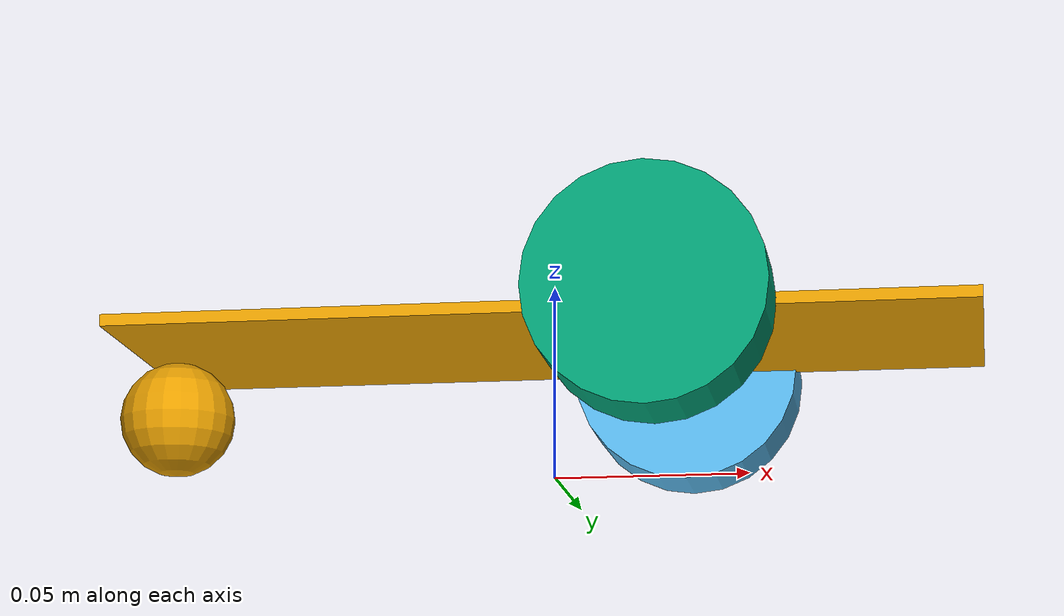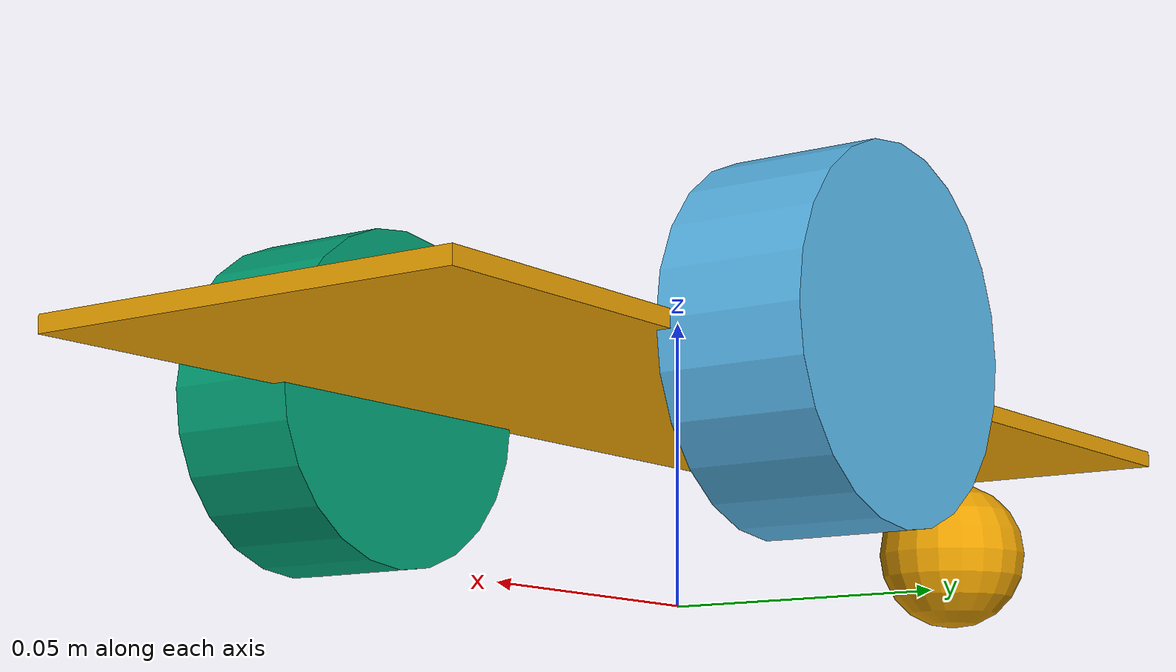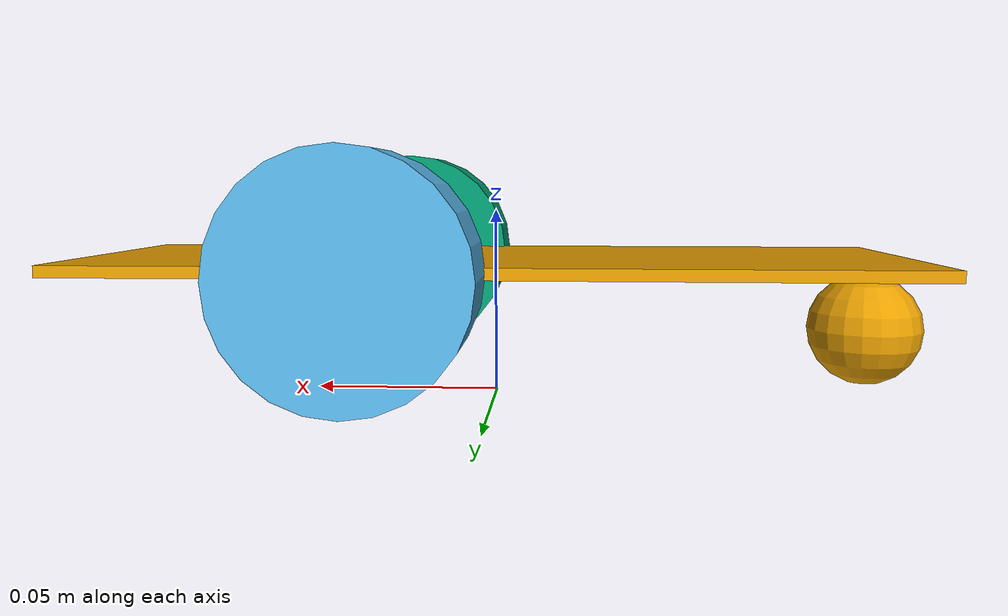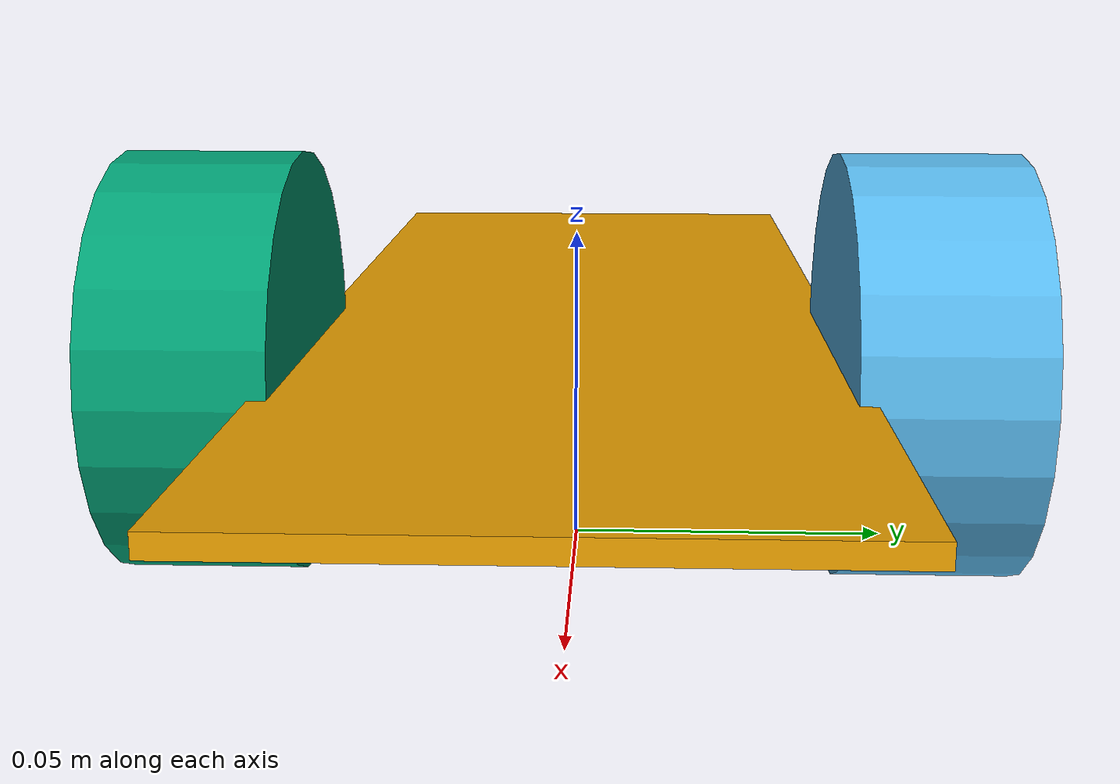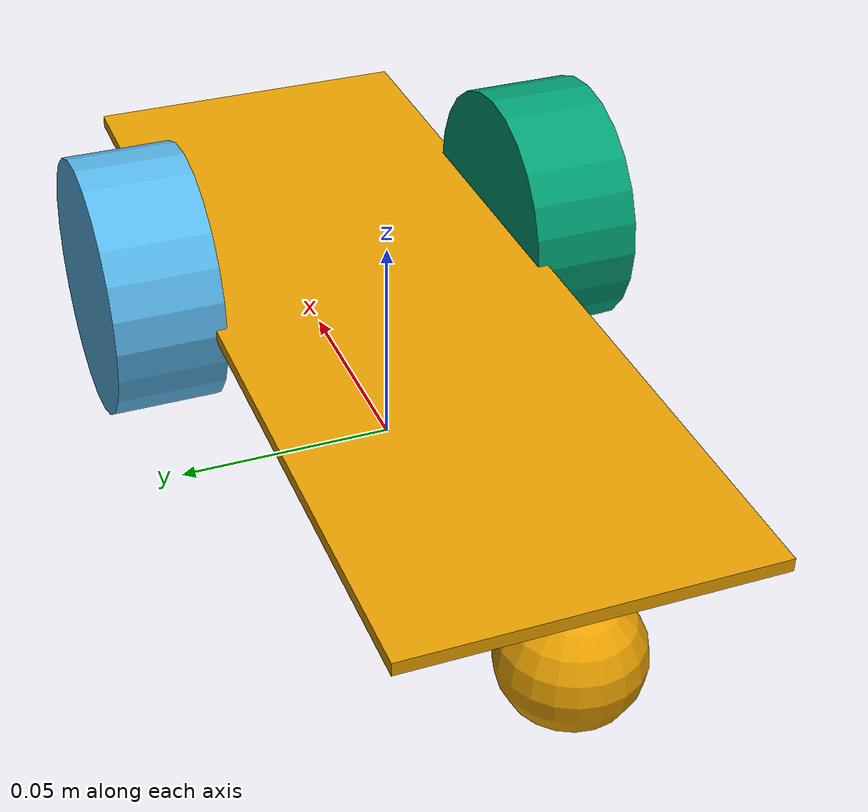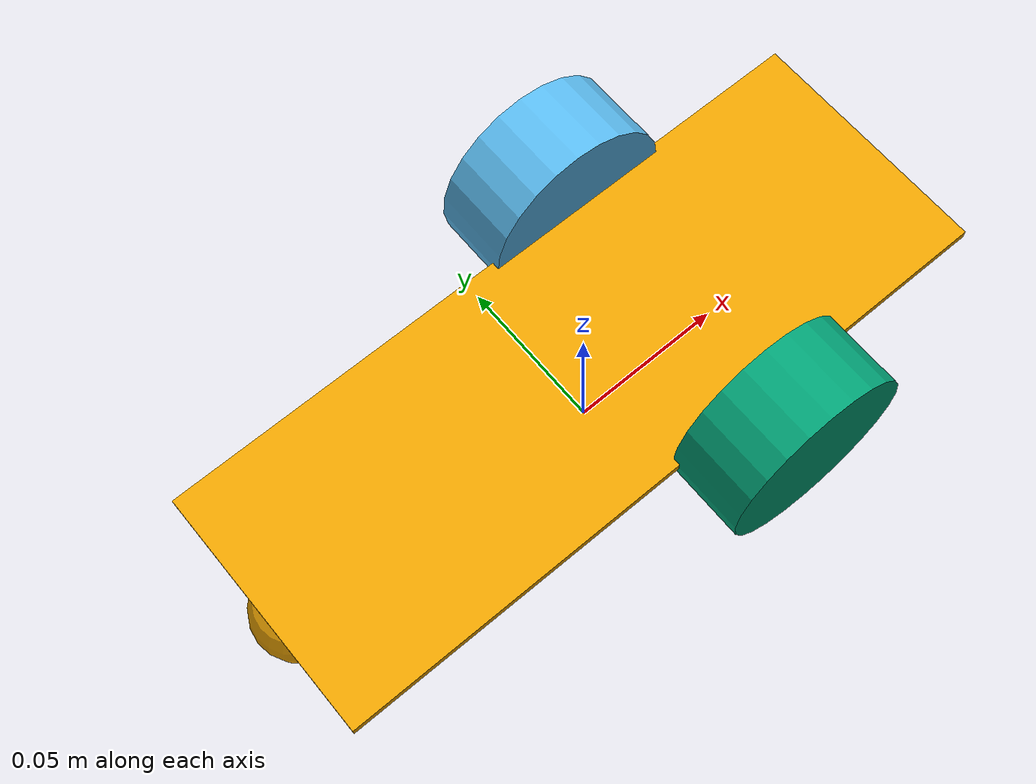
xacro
<?xml version='1.0'?>

<robot name="pidar" xmlns:xacro="http://www.ros.org/wiki/xacro">
  <link name='base_link'>
    <pose>0 0 0.1 0 0 0</pose>

    <inertial>
      <mass value="15.0"/>
      <origin xyz="0 0 0.036" rpy=" 0 0 0"/>
      <inertia
          ixx="0.1" ixy="0" ixz="0"
          iyy="0.1" iyz="0"
          izz="0.1"
      />
    </inertial>

    <collision name='collision'>
      <origin xyz="0 0 0.036" rpy=" 0 0 0"/>
      <geometry>
        <box size=".22 .08 .003"/>
      </geometry>
    </collision>

    <visual name='base_link_visual'>
      <origin xyz="0 0 0.036" rpy=" 0 0 0"/>
      <geometry>
        <box size=".22 .08 .003"/>
      </geometry>
    </visual>

    <collision name='caster_collision'>
      <origin xyz="-0.1 0 0.018" rpy=" 0 0 0"/>
      <geometry>
        <sphere radius="0.015"/>
      </geometry>
      <surface>
        <friction>
          <ode>
            <mu>0</mu>
            <mu2>0</mu2>
            <slip1>1.0</slip1>
            <slip2>1.0</slip2>
          </ode>
        </friction>
      </surface>
    </collision>

    <visual name='caster_visual'>
      <origin xyz="-0.1 0 0.018" rpy=" 0 0 0"/>
      <geometry>
        <sphere radius="0.015"/>
      </geometry>
    </visual>

  </link>

  <link name="left_wheel">
    <!--origin xyz="0.1 0.13 0.1" rpy="0 1.5707 1.5707"/-->
    <collision name="collision">
      <origin xyz="0 0 0" rpy="0 1.5707 1.5707"/>
      <geometry>
        <cylinder radius="0.03" length="0.025"/>
      </geometry>
    </collision>
    <visual name="left_wheel_visual">
      <origin xyz="0 0 0" rpy="0 1.5707 1.5707"/>
      <geometry>
        <cylinder radius="0.03" length="0.025"/>
      </geometry>
    </visual>
    <inertial>
      <origin xyz="0 0 0" rpy="0 1.5707 1.5707"/>
      <mass value="5"/>
      <inertia
        ixx=".1" ixy="0.0" ixz="0.0"
        iyy=".1" iyz="0.0"
        izz=".1"/>
    </inertial>
  </link>

  <link name="right_wheel">
    <!--origin xyz="0.1 -0.13 0.1" rpy="0 1.5707 1.5707"/-->
    <collision name="collision">
      <origin xyz="0 0 0" rpy="0 1.5707 1.5707"/>
      <geometry>
        <cylinder radius="0.03" length="0.025"/>
      </geometry>
    </collision>
    <visual name="right_wheel_visual">
      <origin xyz="0 0 0" rpy="0 1.5707 1.5707"/>
      <geometry>
        <cylinder radius="0.03" length="0.025"/>
      </geometry>
    </visual>
    <inertial>
      <origin xyz="0 0 0" rpy="0 1.5707 1.5707"/>
      <mass value="5"/>
      <inertia
        ixx=".1" ixy="0.0" ixz="0.0"
        iyy=".1" iyz="0.0"
        izz=".1"/>
    </inertial>
  </link>

  <joint type="continuous" name="left_wheel_joint">
    <origin xyz="0.03 0.05 0.036" rpy="0 0 0"/>
    <!--origin xyz="0.1 0.13 0" rpy="0 1.5707 1.5707"/-->
    <child link="left_wheel"/>
    <parent link="base_link"/>
    <axis xyz="0 1 0" rpy="0 0 0"/>
    <limit effort="10000" velocity="1000"/>
    <joint_properties damping="1.0" friction="1.0"/>
  </joint>

  <joint type="continuous" name="right_wheel_joint">
    <origin xyz="0.03 -0.05 0.036" rpy="0 0 0"/>
    <!--origin xyz="0.1 -0.13 0" rpy="0 1.5707 1.5707"/-->
    <child link="right_wheel"/>
    <parent link="base_link"/>
    <axis xyz="0 1 0" rpy="0 0 0"/>
    <limit effort="10000" velocity="1000"/>
    <joint_properties damping="1.0" friction="1.0"/>
  </joint>

  <!-- Transmissions -->
  <transmission name="left_wheel_tran">
    <type>hardware_interface</type>
    <joint name="left_wheel_joint">
      <hardwareInterface>VelocityJointInterface</hardwareInterface>
    </joint>
    <actuator name="left_wheel_motor">
      <hardwareInterface>VelocityJointInterface</hardwareInterface>
    </actuator>
  </transmission>

  <transmission name="right_wheel_tran">
    <type>hardware_interface</type>
    <joint name="right_wheel_joint">
      <hardwareInterface>VelocityJointInterface</hardwareInterface>
    </joint>
    <actuator name="right_wheel_motor">
      <hardwareInterface>VelocityJointInterface</hardwareInterface>
    </actuator>
  </transmission>

</robot>
